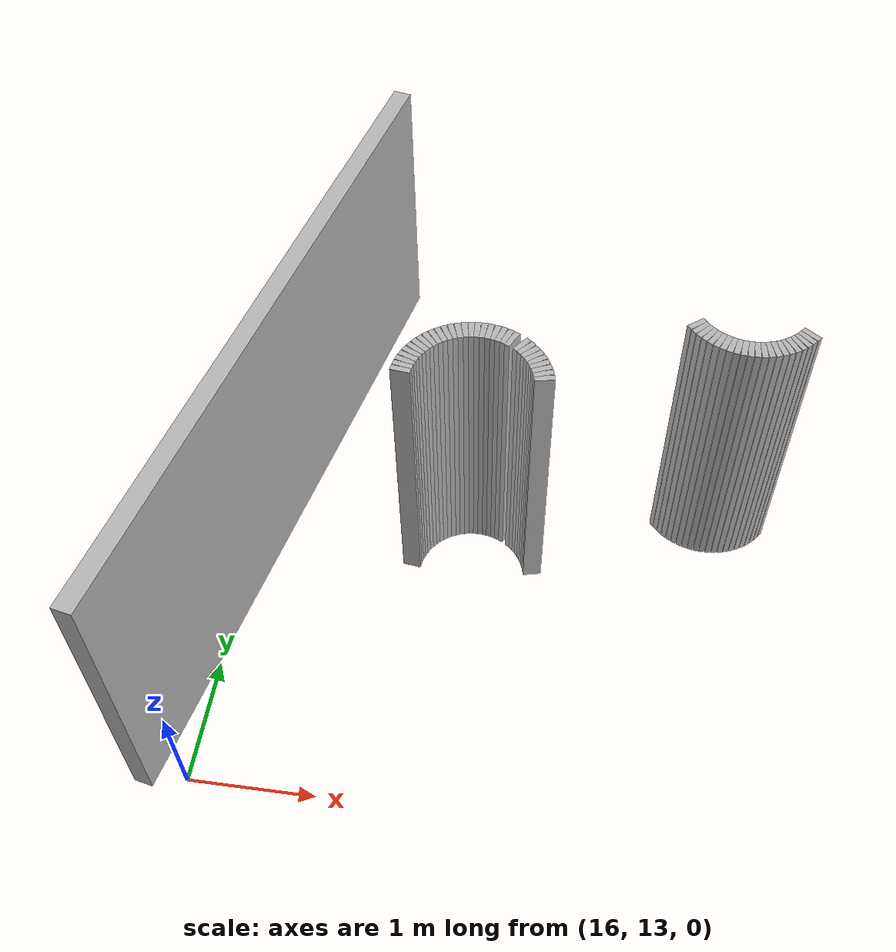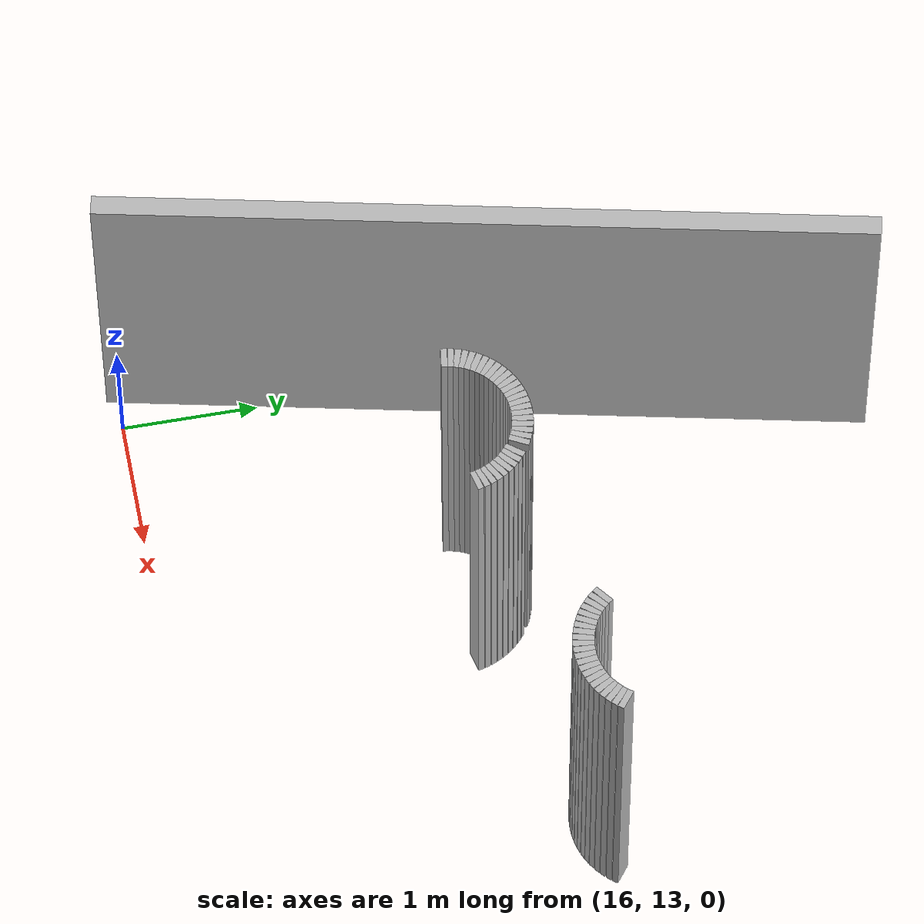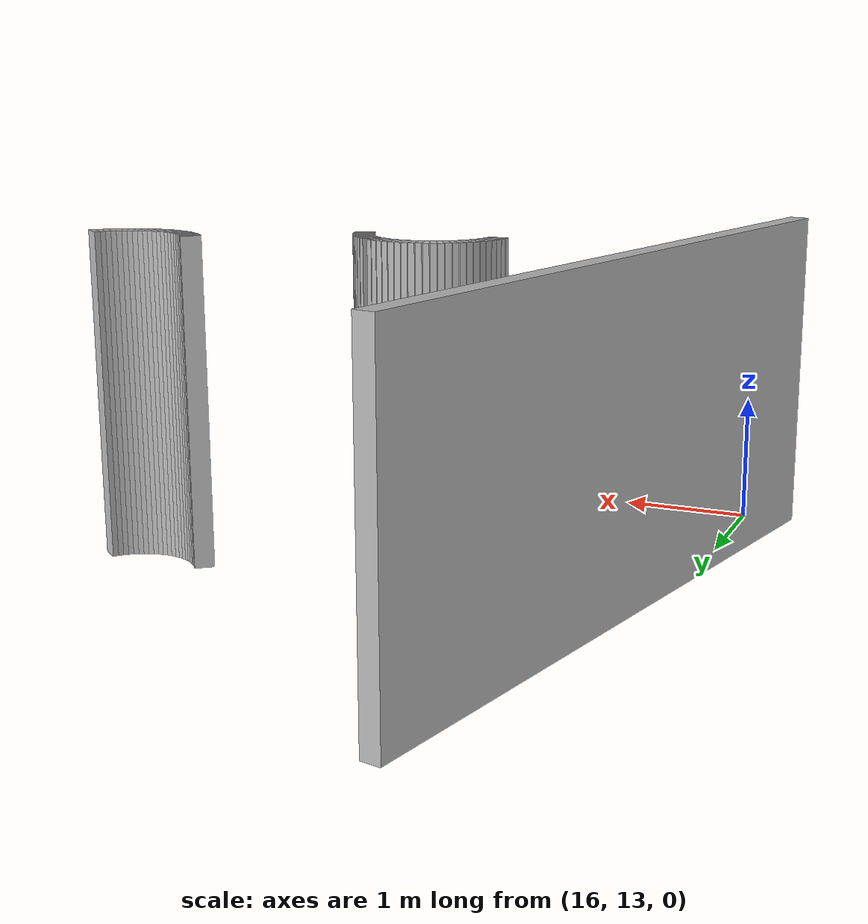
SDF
<sdf version="1.6">
 <model name="sps_2504">
  <static>1</static>
  <allow_auto_disable>0</allow_auto_disable>
  <link name="Wall1921">
   <collision name="collision"><geometry><box><size>0.0454753 0.15 2.5</size></box></geometry></collision>
   <visual name="visual">
    <geometry><box><size>0.0454753 0.15 2.5</size></box></geometry>
    <transparency>0.0</transparency>
   </visual>
   <pose>20.2945 15.8779 1.25 0 0 -2.22772</pose>
  </link>
  <link name="Wall1922">
   <collision name="collision"><geometry><box><size>0.0452735 0.15 2.5</size></box></geometry></collision>
   <visual name="visual">
    <geometry><box><size>0.0452735 0.15 2.5</size></box></geometry>
    <transparency>0.0</transparency>
   </visual>
   <pose>20.2654 15.8432 1.25 0 0 -2.31233</pose>
  </link>
  <link name="Wall1923">
   <collision name="collision"><geometry><box><size>0.0454836 0.15 2.5</size></box></geometry></collision>
   <visual name="visual">
    <geometry><box><size>0.0454836 0.15 2.5</size></box></geometry>
    <transparency>0.0</transparency>
   </visual>
   <pose>20.2334 15.8111 1.25 0 0 -2.39701</pose>
  </link>
  <link name="Wall1924">
   <collision name="collision"><geometry><box><size>0.0453153 0.15 2.5</size></box></geometry></collision>
   <visual name="visual">
    <geometry><box><size>0.0453153 0.15 2.5</size></box></geometry>
    <transparency>0.0</transparency>
   </visual>
   <pose>20.1987 15.7819 1.25 0 0 -2.48705</pose>
  </link>
  <link name="Wall1925">
   <collision name="collision"><geometry><box><size>0.0455479 0.15 2.5</size></box></geometry></collision>
   <visual name="visual">
    <geometry><box><size>0.0455479 0.15 2.5</size></box></geometry>
    <transparency>0.0</transparency>
   </visual>
   <pose>20.1615 15.7559 1.25 0 0 -2.57589</pose>
  </link>
  <link name="Wall1926">
   <collision name="collision"><geometry><box><size>0.0452058 0.15 2.5</size></box></geometry></collision>
   <visual name="visual">
    <geometry><box><size>0.0452058 0.15 2.5</size></box></geometry>
    <transparency>0.0</transparency>
   </visual>
   <pose>20.1222 15.7333 1.25 0 0 -2.66466</pose>
  </link>
  <link name="Wall1927">
   <collision name="collision"><geometry><box><size>0.0452834 0.15 2.5</size></box></geometry></collision>
   <visual name="visual">
    <geometry><box><size>0.0452834 0.15 2.5</size></box></geometry>
    <transparency>0.0</transparency>
   </visual>
   <pose>20.0812 15.7142 1.25 0 0 -2.74732</pose>
  </link>
  <link name="Wall1928">
   <collision name="collision"><geometry><box><size>0.0454804 0.15 2.5</size></box></geometry></collision>
   <visual name="visual">
    <geometry><box><size>0.0454804 0.15 2.5</size></box></geometry>
    <transparency>0.0</transparency>
   </visual>
   <pose>20.0386 15.6987 1.25 0 0 -2.83767</pose>
  </link>
  <link name="Wall1929">
   <collision name="collision"><geometry><box><size>0.0452689 0.15 2.5</size></box></geometry></collision>
   <visual name="visual">
    <geometry><box><size>0.0452689 0.15 2.5</size></box></geometry>
    <transparency>0.0</transparency>
   </visual>
   <pose>19.9948 15.687 1.25 0 0 -2.92278</pose>
  </link>
  <link name="Wall1930">
   <collision name="collision"><geometry><box><size>0.0454394 0.15 2.5</size></box></geometry></collision>
   <visual name="visual">
    <geometry><box><size>0.0454394 0.15 2.5</size></box></geometry>
    <transparency>0.0</transparency>
   </visual>
   <pose>19.9502 15.6791 1.25 0 0 -3.00957</pose>
  </link>
  <link name="Wall1931">
   <collision name="collision"><geometry><box><size>0.0453861 0.15 2.5</size></box></geometry></collision>
   <visual name="visual">
    <geometry><box><size>0.0453861 0.15 2.5</size></box></geometry>
    <transparency>0.0</transparency>
   </visual>
   <pose>19.905 15.6752 1.25 0 0 -3.10124</pose>
  </link>
  <link name="Wall1932">
   <collision name="collision"><geometry><box><size>0.0452719 0.15 2.5</size></box></geometry></collision>
   <visual name="visual">
    <geometry><box><size>0.0452719 0.15 2.5</size></box></geometry>
    <transparency>0.0</transparency>
   </visual>
   <pose>19.8597 15.6753 1.25 0 -0 3.09709</pose>
  </link>
  <link name="Wall1933">
   <collision name="collision"><geometry><box><size>0.0453551 0.15 2.5</size></box></geometry></collision>
   <visual name="visual">
    <geometry><box><size>0.0453551 0.15 2.5</size></box></geometry>
    <transparency>0.0</transparency>
   </visual>
   <pose>19.8146 15.6792 1.25 0 -0 3.0134</pose>
  </link>
  <link name="Wall1934">
   <collision name="collision"><geometry><box><size>0.0455072 0.15 2.5</size></box></geometry></collision>
   <visual name="visual">
    <geometry><box><size>0.0455072 0.15 2.5</size></box></geometry>
    <transparency>0.0</transparency>
   </visual>
   <pose>19.7699 15.687 1.25 0 -0 2.92394</pose>
  </link>
  <link name="Wall1935">
   <collision name="collision"><geometry><box><size>0.0453611 0.15 2.5</size></box></geometry></collision>
   <visual name="visual">
    <geometry><box><size>0.0453611 0.15 2.5</size></box></geometry>
    <transparency>0.0</transparency>
   </visual>
   <pose>19.726 15.6988 1.25 0 -0 2.83261</pose>
  </link>
  <link name="Wall1936">
   <collision name="collision"><geometry><box><size>0.0453827 0.15 2.5</size></box></geometry></collision>
   <visual name="visual">
    <geometry><box><size>0.0453827 0.15 2.5</size></box></geometry>
    <transparency>0.0</transparency>
   </visual>
   <pose>19.6834 15.7143 1.25 0 -0 2.75259</pose>
  </link>
  <link name="Wall1937">
   <collision name="collision"><geometry><box><size>0.0453183 0.15 2.5</size></box></geometry></collision>
   <visual name="visual">
    <geometry><box><size>0.0453183 0.15 2.5</size></box></geometry>
    <transparency>0.0</transparency>
   </visual>
   <pose>19.6424 15.7334 1.25 0 -0 2.65987</pose>
  </link>
  <link name="Wall1938">
   <collision name="collision"><geometry><box><size>0.0453092 0.15 2.5</size></box></geometry></collision>
   <visual name="visual">
    <geometry><box><size>0.0453092 0.15 2.5</size></box></geometry>
    <transparency>0.0</transparency>
   </visual>
   <pose>19.6032 15.7561 1.25 0 -0 2.57414</pose>
  </link>
  <link name="Wall1939">
   <collision name="collision"><geometry><box><size>0.0454008 0.15 2.5</size></box></geometry></collision>
   <visual name="visual">
    <geometry><box><size>0.0454008 0.15 2.5</size></box></geometry>
    <transparency>0.0</transparency>
   </visual>
   <pose>19.5661 15.7821 1.25 0 -0 2.4868</pose>
  </link>
  <link name="Wall1940">
   <collision name="collision"><geometry><box><size>0.0453974 0.15 2.5</size></box></geometry></collision>
   <visual name="visual">
    <geometry><box><size>0.0453974 0.15 2.5</size></box></geometry>
    <transparency>0.0</transparency>
   </visual>
   <pose>19.5314 15.8113 1.25 0 -0 2.39709</pose>
  </link>
  <link name="Wall1941">
   <collision name="collision"><geometry><box><size>0.0453598 0.15 2.5</size></box></geometry></collision>
   <visual name="visual">
    <geometry><box><size>0.0453598 0.15 2.5</size></box></geometry>
    <transparency>0.0</transparency>
   </visual>
   <pose>19.4994 15.8434 1.25 0 -0 2.31241</pose>
  </link>
  <link name="Wall1942">
   <collision name="collision"><geometry><box><size>0.0453153 0.15 2.5</size></box></geometry></collision>
   <visual name="visual">
    <geometry><box><size>0.0453153 0.15 2.5</size></box></geometry>
    <transparency>0.0</transparency>
   </visual>
   <pose>19.4702 15.8781 1.25 0 -0 2.22534</pose>
  </link>
  <link name="Wall2116">
   <collision name="collision"><geometry><box><size>0.0454753 0.15 2.5</size></box></geometry></collision>
   <visual name="visual">
    <geometry><box><size>0.0454753 0.15 2.5</size></box></geometry>
    <transparency>0.0</transparency>
   </visual>
   <pose>18.2187 15.502 1.25 0 0 -0.656923</pose>
  </link>
  <link name="Wall2117">
   <collision name="collision"><geometry><box><size>0.0453148 0.15 2.5</size></box></geometry></collision>
   <visual name="visual">
    <geometry><box><size>0.0453148 0.15 2.5</size></box></geometry>
    <transparency>0.0</transparency>
   </visual>
   <pose>18.2533 15.4728 1.25 0 0 -0.742526</pose>
  </link>
  <link name="Wall2118">
   <collision name="collision"><geometry><box><size>0.0454388 0.15 2.5</size></box></geometry></collision>
   <visual name="visual">
    <geometry><box><size>0.0454388 0.15 2.5</size></box></geometry>
    <transparency>0.0</transparency>
   </visual>
   <pose>18.2855 15.4408 1.25 0 0 -0.825301</pose>
  </link>
  <link name="Wall2119">
   <collision name="collision"><geometry><box><size>0.0453637 0.15 2.5</size></box></geometry></collision>
   <visual name="visual">
    <geometry><box><size>0.0453637 0.15 2.5</size></box></geometry>
    <transparency>0.0</transparency>
   </visual>
   <pose>18.3147 15.4061 1.25 0 0 -0.91707</pose>
  </link>
  <link name="Wall2120">
   <collision name="collision"><geometry><box><size>0.0452437 0.15 2.5</size></box></geometry></collision>
   <visual name="visual">
    <geometry><box><size>0.0452437 0.15 2.5</size></box></geometry>
    <transparency>0.0</transparency>
   </visual>
   <pose>18.3406 15.369 1.25 0 0 -1.00562</pose>
  </link>
  <link name="Wall2121">
   <collision name="collision"><geometry><box><size>0.0455348 0.15 2.5</size></box></geometry></collision>
   <visual name="visual">
    <geometry><box><size>0.0455348 0.15 2.5</size></box></geometry>
    <transparency>0.0</transparency>
   </visual>
   <pose>18.3632 15.3297 1.25 0 0 -1.09156</pose>
  </link>
  <link name="Wall2122">
   <collision name="collision"><geometry><box><size>0.0452271 0.15 2.5</size></box></geometry></collision>
   <visual name="visual">
    <geometry><box><size>0.0452271 0.15 2.5</size></box></geometry>
    <transparency>0.0</transparency>
   </visual>
   <pose>18.3824 15.2886 1.25 0 0 -1.17601</pose>
  </link>
  <link name="Wall2123">
   <collision name="collision"><geometry><box><size>0.0454804 0.15 2.5</size></box></geometry></collision>
   <visual name="visual">
    <geometry><box><size>0.0454804 0.15 2.5</size></box></geometry>
    <transparency>0.0</transparency>
   </visual>
   <pose>18.3979 15.246 1.25 0 0 -1.26687</pose>
  </link>
  <link name="Wall2124">
   <collision name="collision"><geometry><box><size>0.0453153 0.15 2.5</size></box></geometry></collision>
   <visual name="visual">
    <geometry><box><size>0.0453153 0.15 2.5</size></box></geometry>
    <transparency>0.0</transparency>
   </visual>
   <pose>18.4096 15.2022 1.25 0 0 -1.35359</pose>
  </link>
  <link name="Wall2164">
   <collision name="collision"><geometry><box><size>0.0454474 0.15 2.5</size></box></geometry></collision>
   <visual name="visual">
    <geometry><box><size>0.0454474 0.15 2.5</size></box></geometry>
    <transparency>0.0</transparency>
   </visual>
   <pose>17.3873 15.1578 1.25 0 -0 1.43745</pose>
  </link>
  <link name="Wall2165">
   <collision name="collision"><geometry><box><size>0.0454345 0.15 2.5</size></box></geometry></collision>
   <visual name="visual">
    <geometry><box><size>0.0454345 0.15 2.5</size></box></geometry>
    <transparency>0.0</transparency>
   </visual>
   <pose>17.3952 15.2025 1.25 0 -0 1.35417</pose>
  </link>
  <link name="Wall2166">
   <collision name="collision"><geometry><box><size>0.0453611 0.15 2.5</size></box></geometry></collision>
   <visual name="visual">
    <geometry><box><size>0.0453611 0.15 2.5</size></box></geometry>
    <transparency>0.0</transparency>
   </visual>
   <pose>17.4069 15.2463 1.25 0 -0 1.26181</pose>
  </link>
  <link name="Wall2167">
   <collision name="collision"><geometry><box><size>0.0453827 0.15 2.5</size></box></geometry></collision>
   <visual name="visual">
    <geometry><box><size>0.0453827 0.15 2.5</size></box></geometry>
    <transparency>0.0</transparency>
   </visual>
   <pose>17.4224 15.2889 1.25 0 -0 1.1818</pose>
  </link>
  <link name="Wall2168">
   <collision name="collision"><geometry><box><size>0.0453724 0.15 2.5</size></box></geometry></collision>
   <visual name="visual">
    <geometry><box><size>0.0453724 0.15 2.5</size></box></geometry>
    <transparency>0.0</transparency>
   </visual>
   <pose>17.4416 15.33 1.25 0 -0 1.0897</pose>
  </link>
  <link name="Wall2169">
   <collision name="collision"><geometry><box><size>0.045342 0.15 2.5</size></box></geometry></collision>
   <visual name="visual">
    <geometry><box><size>0.045342 0.15 2.5</size></box></geometry>
    <transparency>0.0</transparency>
   </visual>
   <pose>17.4643 15.3692 1.25 0 -0 1.00221</pose>
  </link>
  <link name="Wall2170">
   <collision name="collision"><geometry><box><size>0.0453153 0.15 2.5</size></box></geometry></collision>
   <visual name="visual">
    <geometry><box><size>0.0453153 0.15 2.5</size></box></geometry>
    <transparency>0.0</transparency>
   </visual>
   <pose>17.4903 15.4063 1.25 0 -0 0.91625</pose>
  </link>
  <link name="Wall2171">
   <collision name="collision"><geometry><box><size>0.0453186 0.15 2.5</size></box></geometry></collision>
   <visual name="visual">
    <geometry><box><size>0.0453186 0.15 2.5</size></box></geometry>
    <transparency>0.0</transparency>
   </visual>
   <pose>17.5193 15.441 1.25 0 -0 0.830173</pose>
  </link>
  <link name="Wall2172">
   <collision name="collision"><geometry><box><size>0.0454539 0.15 2.5</size></box></geometry></collision>
   <visual name="visual">
    <geometry><box><size>0.0454539 0.15 2.5</size></box></geometry>
    <transparency>0.0</transparency>
   </visual>
   <pose>17.5514 15.473 1.25 0 -0 0.737905</pose>
  </link>
  <link name="Wall2173">
   <collision name="collision"><geometry><box><size>0.0454753 0.15 2.5</size></box></geometry></collision>
   <visual name="visual">
    <geometry><box><size>0.0454753 0.15 2.5</size></box></geometry>
    <transparency>0.0</transparency>
   </visual>
   <pose>17.5863 15.5022 1.25 0 -0 0.656923</pose>
  </link>
  <link name="Wall2174">
   <collision name="collision"><geometry><box><size>0.0452437 0.15 2.5</size></box></geometry></collision>
   <visual name="visual">
    <geometry><box><size>0.0452437 0.15 2.5</size></box></geometry>
    <transparency>0.0</transparency>
   </visual>
   <pose>17.6234 15.5282 1.25 0 -0 0.565177</pose>
  </link>
  <link name="Wall2175">
   <collision name="collision"><geometry><box><size>0.0453183 0.15 2.5</size></box></geometry></collision>
   <visual name="visual">
    <geometry><box><size>0.0453183 0.15 2.5</size></box></geometry>
    <transparency>0.0</transparency>
   </visual>
   <pose>17.6626 15.5508 1.25 0 -0 0.481718</pose>
  </link>
  <link name="Wall2176">
   <collision name="collision"><geometry><box><size>0.0454525 0.15 2.5</size></box></geometry></collision>
   <visual name="visual">
    <geometry><box><size>0.0454525 0.15 2.5</size></box></geometry>
    <transparency>0.0</transparency>
   </visual>
   <pose>17.7036 15.57 1.25 0 -0 0.392725</pose>
  </link>
  <link name="Wall2177">
   <collision name="collision"><geometry><box><size>0.0453057 0.15 2.5</size></box></geometry></collision>
   <visual name="visual">
    <geometry><box><size>0.0453057 0.15 2.5</size></box></geometry>
    <transparency>0.0</transparency>
   </visual>
   <pose>17.7462 15.5855 1.25 0 -0 0.305135</pose>
  </link>
  <link name="Wall2178">
   <collision name="collision"><geometry><box><size>0.0454941 0.15 2.5</size></box></geometry></collision>
   <visual name="visual">
    <geometry><box><size>0.0454941 0.15 2.5</size></box></geometry>
    <transparency>0.0</transparency>
   </visual>
   <pose>17.7901 15.5972 1.25 0 -0 0.216341</pose>
  </link>
  <link name="Wall2179">
   <collision name="collision"><geometry><box><size>0.0453551 0.15 2.5</size></box></geometry></collision>
   <visual name="visual">
    <geometry><box><size>0.0453551 0.15 2.5</size></box></geometry>
    <transparency>0.0</transparency>
   </visual>
   <pose>17.8348 15.605 1.25 0 -0 0.128194</pose>
  </link>
  <link name="Wall2180">
   <collision name="collision"><geometry><box><size>0.0452109 0.15 2.5</size></box></geometry></collision>
   <visual name="visual">
    <geometry><box><size>0.0452109 0.15 2.5</size></box></geometry>
    <transparency>0.0</transparency>
   </visual>
   <pose>17.8798 15.6089 1.25 0 -0 0.0445651</pose>
  </link>
  <link name="Wall2181">
   <collision name="collision"><geometry><box><size>0.0454548 0.15 2.5</size></box></geometry></collision>
   <visual name="visual">
    <geometry><box><size>0.0454548 0.15 2.5</size></box></geometry>
    <transparency>0.0</transparency>
   </visual>
   <pose>17.9251 15.6089 1.25 0 0 -0.0443258</pose>
  </link>
  <link name="Wall2182">
   <collision name="collision"><geometry><box><size>0.0454156 0.15 2.5</size></box></geometry></collision>
   <visual name="visual">
    <geometry><box><size>0.0454156 0.15 2.5</size></box></geometry>
    <transparency>0.0</transparency>
   </visual>
   <pose>17.9704 15.605 1.25 0 0 -0.128022</pose>
  </link>
  <link name="Wall2183">
   <collision name="collision"><geometry><box><size>0.0452955 0.15 2.5</size></box></geometry></collision>
   <visual name="visual">
    <geometry><box><size>0.0452955 0.15 2.5</size></box></geometry>
    <transparency>0.0</transparency>
   </visual>
   <pose>18.015 15.5971 1.25 0 0 -0.221446</pose>
  </link>
  <link name="Wall2184">
   <collision name="collision"><geometry><box><size>0.0453057 0.15 2.5</size></box></geometry></collision>
   <visual name="visual">
    <geometry><box><size>0.0453057 0.15 2.5</size></box></geometry>
    <transparency>0.0</transparency>
   </visual>
   <pose>18.0587 15.5853 1.25 0 0 -0.305135</pose>
  </link>
  <link name="Wall2185">
   <collision name="collision"><geometry><box><size>0.0454525 0.15 2.5</size></box></geometry></collision>
   <visual name="visual">
    <geometry><box><size>0.0454525 0.15 2.5</size></box></geometry>
    <transparency>0.0</transparency>
   </visual>
   <pose>18.1013 15.5698 1.25 0 0 -0.392725</pose>
  </link>
  <link name="Wall2186">
   <collision name="collision"><geometry><box><size>0.0453183 0.15 2.5</size></box></geometry></collision>
   <visual name="visual">
    <geometry><box><size>0.0453183 0.15 2.5</size></box></geometry>
    <transparency>0.0</transparency>
   </visual>
   <pose>18.1424 15.5506 1.25 0 0 -0.481718</pose>
  </link>
  <link name="Wall2429">
   <collision name="collision"><geometry><box><size>5.57998 0.15 2.5</size></box></geometry></collision>
   <visual name="visual">
    <geometry><box><size>5.57998 0.15 2.5</size></box></geometry>
    <transparency>0.0</transparency>
   </visual>
   <pose>16.2686 15.6603 1.25 0 -0 1.35654</pose>
  </link>
 </model>
</sdf>
